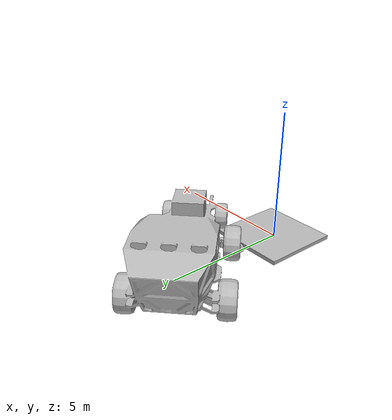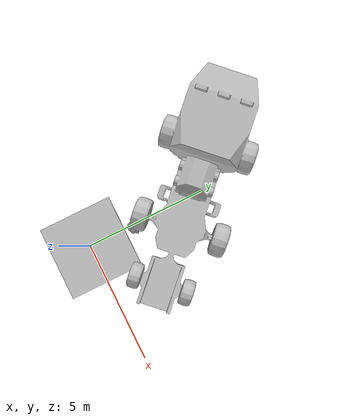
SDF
<sdf version="1.6">
 <world name="SRC_finals">
  <include>
   <name>walkway_1</name>
   <pose>0.09
      0
      -0.052151
      0
      0
      3.141592653589793</pose>
   <uri>model://walkway_finish_opposite</uri>
  </include>
  <include>
   <name>bling_2</name>
   <pose>0.09000000000000027
      1.924
      0
      0
      0
      -2.4492935982947064e-16</pose>
   <uri>model://mars_rock_1</uri>
  </include>
  <include>
   <pose>-0.26724651533946275
        4.799081341867763
        0
        0
        0
        -2.3561944901923453</pose>
   <uri>model://mars_explorer</uri>
  </include>
 </world>
</sdf>
